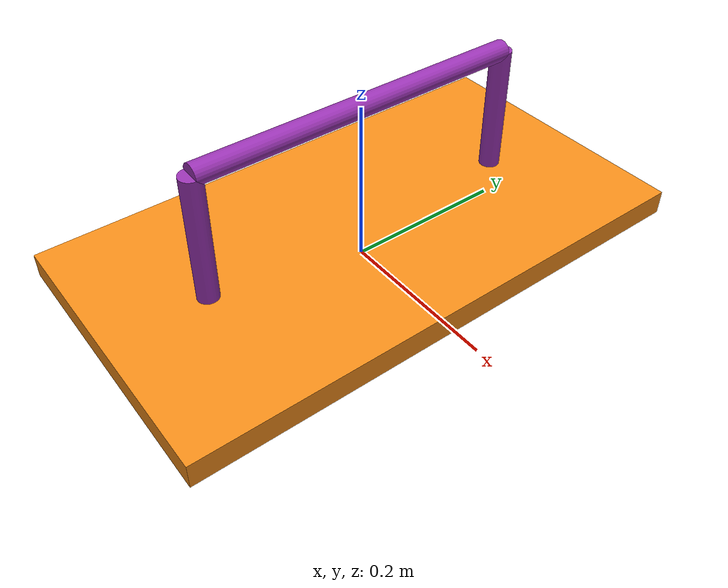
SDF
<?xml version='1.0'?>
<sdf version='1.5'>

  <model name='bin_cover'>
    <pose>0 0 0 0 0 0</pose>
    <self_collide> 0 </self_collide>
    <static>0</static>

    <link name='cover'>
      <pose>0 0 0 0 0 0</pose>
      <visual name='top'>
          <pose>0 0 0.03 0 0 0</pose>
        <geometry>
          <box><size>0.35 0.65 0.03</size></box>
        </geometry>
        <material>
          <script>
            <uri>file://media/materials/scripts/gazebo.material</uri>
            <name>Gazebo/Orange</name>
          </script>
          <diffuse>0.6 0.3088 0.0468 1</diffuse>
        </material>
      </visual>
      <collision name='top_collide'>
        <pose>0 0 0.03 0 0 0</pose>
        <geometry>
          <box><size>0.35 0.65 0.03</size></box>
        </geometry>
      </collision>
      <visual name='bottom'>
          <pose>0 0 0 0 0 0</pose>
        <geometry>
          <box><size>0.28 0.58 0.03</size></box>
        </geometry>
        <material>
          <script>
            <uri>file://media/materials/scripts/gazebo.material</uri>
            <name>Gazebo/FlatBlack</name>
          </script>
          <diffuse>0.3 0.3 0.3 1</diffuse>
        </material>
      </visual>
      <collision name='bottom_collide'>
        <pose>0 0 0 0 0 0</pose>
        <geometry>
          <box><size>0.28 0.58 0.03</size></box>
        </geometry>
      </collision>

        <visual name='htop'>
            <pose>0 0 0.202 1.5707 0 0</pose>
            <geometry>
                <cylinder>
                    <radius>0.0127</radius>
                    <length>0.406</length>
                </cylinder>
            </geometry>
            <material>
              <script>
                <uri>file://media/materials/scripts/gazebo.material</uri>
                <name>Gazebo/Purple</name>
              </script>
              <diffuse>0.4 0 0.4 1</diffuse>
            </material>
        </visual>
        <collision name='htop_collide'>
            <pose>0 0 0.202 1.5707 0 0</pose>
            <geometry>
                <cylinder>
                    <radius>0.0127</radius>
                    <length>0.406</length>
                </cylinder>
            </geometry>
        </collision>
        <visual name='u1'>
            <pose>0 0.203 0.101 0 0 0</pose>
            <geometry>
                <cylinder>
                    <radius>0.0127</radius>
                    <length>0.202</length>
                </cylinder>
            </geometry>
            <material>
              <script>
                <uri>file://media/materials/scripts/gazebo.material</uri>
                <name>Gazebo/Purple</name>
              </script>
              <diffuse>0.4 0 0.4 1</diffuse>
            </material>
        </visual>
        <collision name='u1_collide'>
            <pose>0 0.203 0.101 0 0 0</pose>
            <geometry>
                <cylinder>
                    <radius>0.0127</radius>
                    <length>0.202</length>
                </cylinder>
            </geometry>
        </collision>
        <visual name='u2'>
            <pose>0 -0.203 0.101 0 0 0</pose>
            <geometry>
                <cylinder>
                    <radius>0.0127</radius>
                    <length>0.202</length>
                </cylinder>
            </geometry>
            <material>
              <script>
                <uri>file://media/materials/scripts/gazebo.material</uri>
                <name>Gazebo/Purple</name>
              </script>
              <diffuse>0.4 0 0.4 1</diffuse>
            </material>
        </visual>
        <collision name='u2_collide'>
            <pose>0 -0.203 0.101 0 0 0</pose>
            <geometry>
                <cylinder>
                    <radius>0.0127</radius>
                    <length>0.202</length>
                </cylinder>
            </geometry>
        </collision>
    </link>

  </model>
</sdf>
